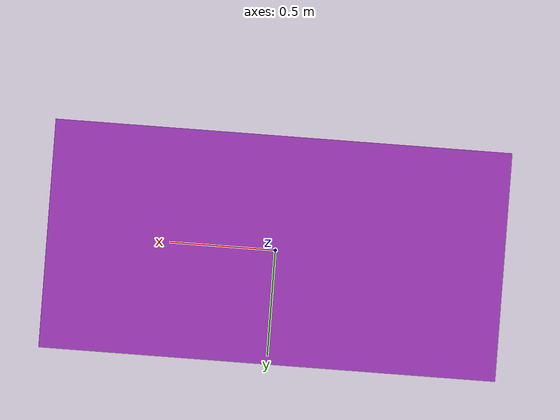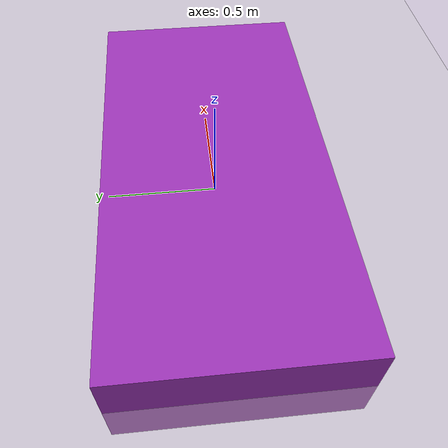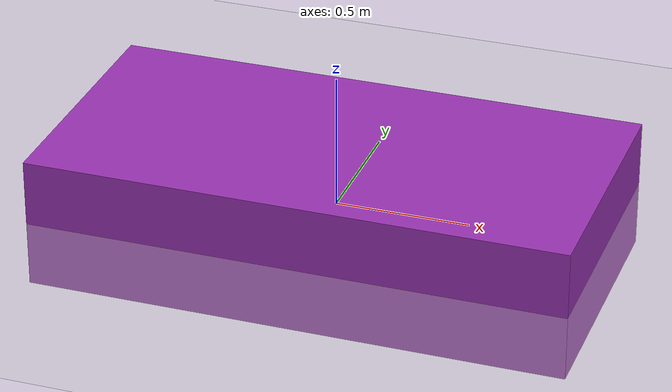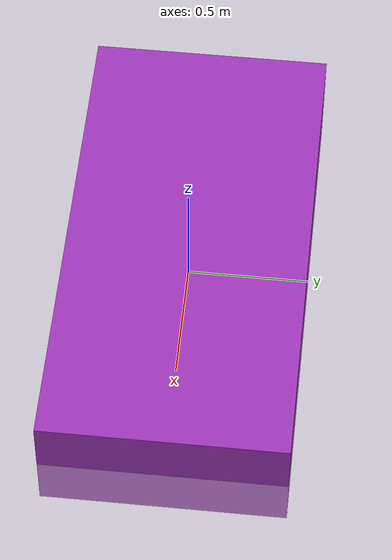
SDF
<sdf version="1.6">
 <world name="default">
  <model name="ground_plane">
   <static>1</static>
   <link name="link">
    <collision name="collision">
     <geometry><plane><normal>0 0 1</normal><size>100 100</size></plane></geometry>
     <surface>
      <contact><collide_bitmask>65535</collide_bitmask></contact>
      <friction><ode><mu>100</mu><mu2>50</mu2></ode></friction>
     </surface>
    </collision>
    <visual name="visual">
     <cast_shadows>0</cast_shadows>
     <geometry><plane><normal>0 0 1</normal><size>100 100</size></plane></geometry>
     <material>
      <script><uri>file://media/materials/scripts/gazebo.material</uri><name>Gazebo/Grey</name></script>
     </material>
    </visual>
   </link>
  </model>
  <gravity>0 0 -9.8</gravity>
  <magnetic_field>6e-06 2.3e-05 -4.2e-05</magnetic_field>
  <atmosphere type="adiabatic"/>
  <physics name="default_physics" default="0" type="ode">
   <max_step_size>0.001</max_step_size>
   <real_time_factor>1</real_time_factor>
   <real_time_update_rate>1000</real_time_update_rate>
  </physics>
  <scene><ambient>0.4 0.4 0.4 1</ambient><background>0.7 0.7 0.7 1</background><shadows>1</shadows></scene>
  <audio><device>default</device></audio>
  <spherical_coordinates>
   <surface_model>EARTH_WGS84</surface_model>
   <latitude_deg>0</latitude_deg>
   <longitude_deg>0</longitude_deg>
   <elevation>0</elevation>
   <heading_deg>0</heading_deg>
  </spherical_coordinates>
  <light name="sun" type="directional">
   <pose>-5.5 -6.5 10 0 -0 0</pose>
   <diffuse>1 1 1 1</diffuse>
   <specular>0.2 0.2 0.2 1</specular>
   <attenuation>
    <range>1000</range>
    <constant>0.9</constant>
    <linear>0.01</linear>
    <quadratic>0.001</quadratic>
   </attenuation>
   <cast_shadows>0</cast_shadows>
   <direction>0 0 -1</direction>
  </light>
  <model name="unit_box">
   <link name="link">
    <inertial>
     <mass>10</mass>
     <inertia><ixx>1</ixx><ixy>0</ixy><ixz>0</ixz><iyy>1</iyy><iyz>0</iyz><izz>1</izz></inertia>
    </inertial>
    <visual name="visual">
     <geometry><box><size>2 1 0.49</size></box></geometry>
     <material>
      <script><name>Gazebo/Purple</name><uri>file://media/materials/scripts/gazebo.material</uri></script>
      <shader type="vertex"><normal_map>__default__</normal_map></shader>
      <ambient>0.3 0 0.3 1</ambient>
      <diffuse>0.7 0 0.7 1</diffuse>
      <specular>0.1 0.1 0.1 1</specular>
      <emissive>0 0 0 1</emissive>
     </material>
    </visual>
    <collision name="collision">
     <geometry><box><size>2 1 0.49</size></box></geometry>
     <surface>
      <friction>
       <ode><mu>1</mu><mu2>1</mu2><fdir1>0 0 0</fdir1><slip1>0</slip1><slip2>0</slip2></ode>
       <torsional>
        <coefficient>1</coefficient>
        <patch_radius>0</patch_radius>
        <surface_radius>0</surface_radius>
        <use_patch_radius>1</use_patch_radius>
        <ode><slip>0</slip></ode>
       </torsional>
      </friction>
      <bounce><restitution_coefficient>0</restitution_coefficient><threshold>1e+06</threshold></bounce>
      <contact>
       <collide_without_contact>0</collide_without_contact>
       <collide_without_contact_bitmask>1</collide_without_contact_bitmask>
       <collide_bitmask>1</collide_bitmask>
       <ode>
        <soft_cfm>0</soft_cfm>
        <soft_erp>0.2</soft_erp>
        <kp>1e+13</kp>
        <kd>1</kd>
        <max_vel>0.01</max_vel>
        <min_depth>0</min_depth>
       </ode>
       <bullet>
        <split_impulse>1</split_impulse>
        <split_impulse_penetration_threshold>-0.01</split_impulse_penetration_threshold>
        <soft_cfm>0</soft_cfm>
        <soft_erp>0.2</soft_erp>
        <kp>1e+13</kp>
        <kd>1</kd>
       </bullet>
      </contact>
     </surface>
    </collision>
   </link>
   <static>0</static>
  </model>
  <model name="unit_box_0">
   <link name="link">
    <inertial>
     <mass>1</mass>
     <inertia>
      <ixx>0.166667</ixx>
      <ixy>0</ixy>
      <ixz>0</ixz>
      <iyy>0.166667</iyy>
      <iyz>0</iyz>
      <izz>0.166667</izz>
     </inertia>
    </inertial>
    <visual name="visual">
     <geometry><box><size>0.03 0.03 0.1</size></box></geometry>
     <material>
      <script><name>Gazebo/Grey</name><uri>file://media/materials/scripts/gazebo.material</uri></script>
      <shader type="vertex"><normal_map>__default__</normal_map></shader>
      <ambient>0.3 0.3 0.3 1</ambient>
      <diffuse>0.7 0.7 0.7 1</diffuse>
      <specular>0.01 0.01 0.01 1</specular>
      <emissive>0 0 0 1</emissive>
     </material>
    </visual>
    <collision name="collision">
     <geometry><box><size>0.03 0.03 0.1</size></box></geometry>
     <surface>
      <friction>
       <ode><mu>1</mu><mu2>1</mu2><fdir1>0 0 0</fdir1><slip1>0</slip1><slip2>0</slip2></ode>
       <torsional>
        <coefficient>1</coefficient>
        <patch_radius>0</patch_radius>
        <surface_radius>0</surface_radius>
        <use_patch_radius>1</use_patch_radius>
        <ode><slip>0</slip></ode>
       </torsional>
      </friction>
      <bounce><restitution_coefficient>0</restitution_coefficient><threshold>1e+06</threshold></bounce>
      <contact>
       <collide_without_contact>0</collide_without_contact>
       <collide_without_contact_bitmask>1</collide_without_contact_bitmask>
       <collide_bitmask>1</collide_bitmask>
       <ode>
        <soft_cfm>0</soft_cfm>
        <soft_erp>0.2</soft_erp>
        <kp>1e+13</kp>
        <kd>1</kd>
        <max_vel>0.01</max_vel>
        <min_depth>0</min_depth>
       </ode>
       <bullet>
        <split_impulse>1</split_impulse>
        <split_impulse_penetration_threshold>-0.01</split_impulse_penetration_threshold>
        <soft_cfm>0</soft_cfm>
        <soft_erp>0.2</soft_erp>
        <kp>1e+13</kp>
        <kd>1</kd>
       </bullet>
      </contact>
     </surface>
    </collision>
   </link>
   <static>0</static>
  </model>
  <model name="unit_box_1">
   <link name="link">
    <inertial>
     <mass>1</mass>
     <inertia>
      <ixx>0.166667</ixx>
      <ixy>0</ixy>
      <ixz>0</ixz>
      <iyy>0.166667</iyy>
      <iyz>0</iyz>
      <izz>0.166667</izz>
     </inertia>
    </inertial>
    <visual name="visual">
     <geometry><box><size>0.03 0.03 0.1</size></box></geometry>
     <material>
      <script><name>Gazebo/Grey</name><uri>file://media/materials/scripts/gazebo.material</uri></script>
      <shader type="vertex"><normal_map>__default__</normal_map></shader>
      <ambient>0.3 0.3 0.3 1</ambient>
      <diffuse>0.7 0.7 0.7 1</diffuse>
      <specular>0.01 0.01 0.01 1</specular>
      <emissive>0 0 0 1</emissive>
     </material>
    </visual>
    <collision name="collision">
     <geometry><box><size>0.03 0.03 0.1</size></box></geometry>
     <surface>
      <friction>
       <ode><mu>1</mu><mu2>1</mu2><fdir1>0 0 0</fdir1><slip1>0</slip1><slip2>0</slip2></ode>
       <torsional>
        <coefficient>1</coefficient>
        <patch_radius>0</patch_radius>
        <surface_radius>0</surface_radius>
        <use_patch_radius>1</use_patch_radius>
        <ode><slip>0</slip></ode>
       </torsional>
      </friction>
      <bounce><restitution_coefficient>0</restitution_coefficient><threshold>1e+06</threshold></bounce>
      <contact>
       <collide_without_contact>0</collide_without_contact>
       <collide_without_contact_bitmask>1</collide_without_contact_bitmask>
       <collide_bitmask>1</collide_bitmask>
       <ode>
        <soft_cfm>0</soft_cfm>
        <soft_erp>0.2</soft_erp>
        <kp>1e+13</kp>
        <kd>1</kd>
        <max_vel>0.01</max_vel>
        <min_depth>0</min_depth>
       </ode>
       <bullet>
        <split_impulse>1</split_impulse>
        <split_impulse_penetration_threshold>-0.01</split_impulse_penetration_threshold>
        <soft_cfm>0</soft_cfm>
        <soft_erp>0.2</soft_erp>
        <kp>1e+13</kp>
        <kd>1</kd>
       </bullet>
      </contact>
     </surface>
    </collision>
   </link>
   <static>0</static>
  </model>
  <model name="unit_box_2">
   <link name="link">
    <inertial>
     <mass>1</mass>
     <inertia>
      <ixx>0.166667</ixx>
      <ixy>0</ixy>
      <ixz>0</ixz>
      <iyy>0.166667</iyy>
      <iyz>0</iyz>
      <izz>0.166667</izz>
     </inertia>
    </inertial>
    <visual name="visual">
     <geometry><box><size>0.03 0.03 0.1</size></box></geometry>
     <material>
      <script><name>Gazebo/Grey</name><uri>file://media/materials/scripts/gazebo.material</uri></script>
      <shader type="vertex"><normal_map>__default__</normal_map></shader>
      <ambient>0.3 0.3 0.3 1</ambient>
      <diffuse>0.7 0.7 0.7 1</diffuse>
      <specular>0.01 0.01 0.01 1</specular>
      <emissive>0 0 0 1</emissive>
     </material>
    </visual>
    <collision name="collision">
     <geometry><box><size>0.03 0.03 0.1</size></box></geometry>
     <surface>
      <friction>
       <ode><mu>1</mu><mu2>1</mu2><fdir1>0 0 0</fdir1><slip1>0</slip1><slip2>0</slip2></ode>
       <torsional>
        <coefficient>1</coefficient>
        <patch_radius>0</patch_radius>
        <surface_radius>0</surface_radius>
        <use_patch_radius>1</use_patch_radius>
        <ode><slip>0</slip></ode>
       </torsional>
      </friction>
      <bounce><restitution_coefficient>0</restitution_coefficient><threshold>1e+06</threshold></bounce>
      <contact>
       <collide_without_contact>0</collide_without_contact>
       <collide_without_contact_bitmask>1</collide_without_contact_bitmask>
       <collide_bitmask>1</collide_bitmask>
       <ode>
        <soft_cfm>0</soft_cfm>
        <soft_erp>0.2</soft_erp>
        <kp>1e+13</kp>
        <kd>1</kd>
        <max_vel>0.01</max_vel>
        <min_depth>0</min_depth>
       </ode>
       <bullet>
        <split_impulse>1</split_impulse>
        <split_impulse_penetration_threshold>-0.01</split_impulse_penetration_threshold>
        <soft_cfm>0</soft_cfm>
        <soft_erp>0.2</soft_erp>
        <kp>1e+13</kp>
        <kd>1</kd>
       </bullet>
      </contact>
     </surface>
    </collision>
   </link>
   <static>0</static>
  </model>
 </world>
</sdf>
